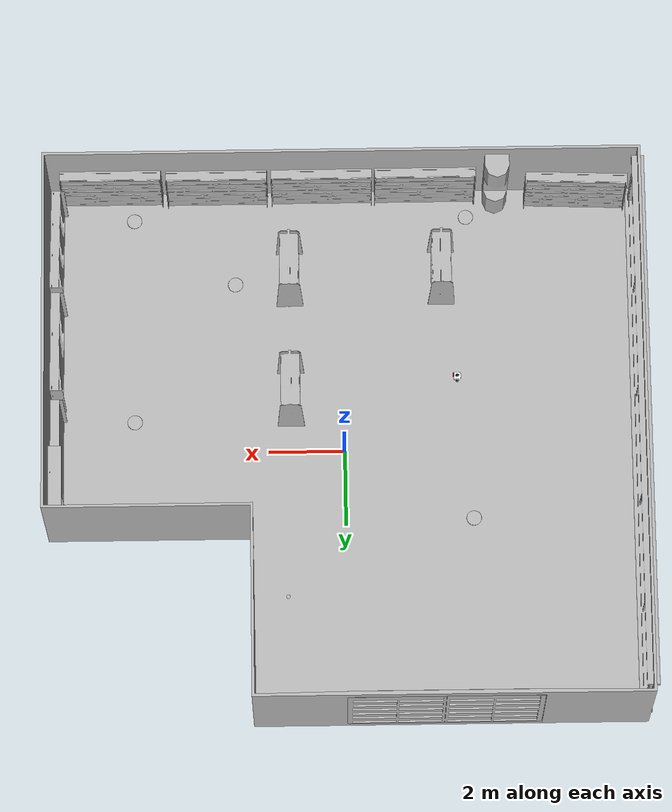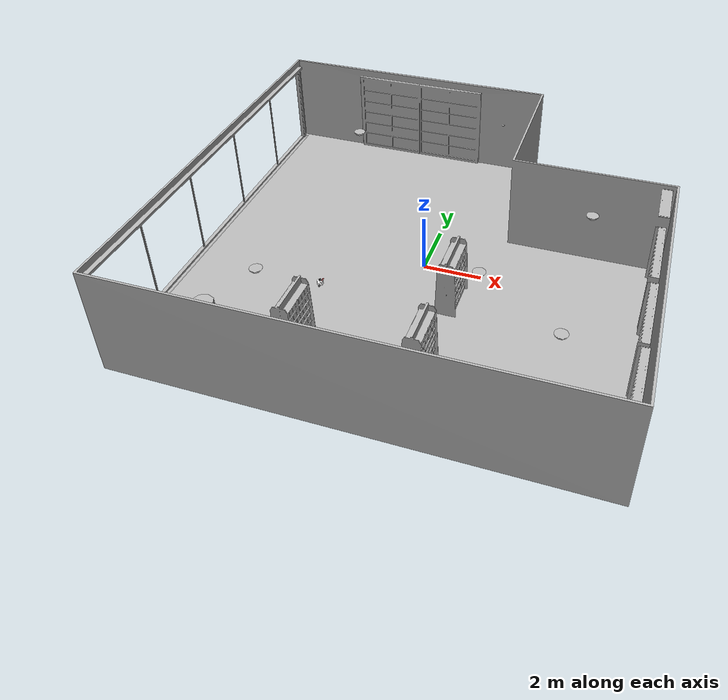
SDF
<sdf version="1.7">
 <world name="default">
  <gravity>0 0 -9.8</gravity>
  <magnetic_field>6e-06 2.3e-05 -4.2e-05</magnetic_field>
  <atmosphere type="adiabatic"/>
  <physics name="default_physics" default="0" type="ode">
   <max_step_size>0.001</max_step_size>
   <real_time_factor>1</real_time_factor>
   <real_time_update_rate>1000</real_time_update_rate>
  </physics>
  <scene>
   <ambient>0.4 0.4 0.4 1</ambient>
   <background>0.7 0.7 0.7 1</background>
   <shadows>1</shadows>
   <grid>0</grid>
   <origin_visual>0</origin_visual>
  </scene>
  <spherical_coordinates>
   <surface_model>EARTH_WGS84</surface_model>
   <latitude_deg>0</latitude_deg>
   <longitude_deg>0</longitude_deg>
   <elevation>0</elevation>
   <heading_deg>0</heading_deg>
  </spherical_coordinates>
  <model name="AirConditionerC_01_001">
   <frame name="aws_robomaker_retail_AirConditionerC_01::__model__" attached_to="aws_robomaker_retail_AirConditionerC_01::link">
    <pose relative_to="__model__">0 0 0 0 -0 0</pose>
   </frame>
   <link name="aws_robomaker_retail_AirConditionerC_01::link">
    <inertial><mass>50</mass></inertial>
    <collision name="collision">
     <geometry>
      <mesh>
       <uri>model://aws_robomaker_retail_AirConditionerC_01/meshes/aws_AirConditionerC_01_collision.DAE</uri>
       <scale>1 1 1</scale>
      </mesh>
     </geometry>
    </collision>
    <visual name="visual">
     <geometry>
      <mesh>
       <uri>model://aws_robomaker_retail_AirConditionerC_01/meshes/aws_AirConditionerC_01_visual.DAE</uri>
      </mesh>
     </geometry>
     <meta><layer>3</layer></meta>
    </visual>
    <pose relative_to="aws_robomaker_retail_AirConditionerC_01::__model__">0 0 0 0 -0 0</pose>
   </link>
   <static>1</static>
   <pose>7.4582 1.42245 3.29094 0 0 -1.56422</pose>
  </model>
  <model name="BookshelfA_01_001">
   <frame name="aws_robomaker_retail_BookshelfA_01::__model__" attached_to="aws_robomaker_retail_BookshelfA_01::link">
    <pose relative_to="__model__">0 0 0 0 -0 0</pose>
   </frame>
   <link name="aws_robomaker_retail_BookshelfA_01::link">
    <inertial>
     <mass>50</mass>
     <inertia><ixx>27.7341</ixx><ixy>0</ixy><ixz>0</ixz><iyy>20.9361</iyy><iyz>0</iyz><izz>11.3596</izz></inertia>
    </inertial>
    <collision name="collision">
     <geometry>
      <mesh>
       <uri>model://aws_robomaker_retail_BookshelfA_01/meshes/aws_BookshelfA_01_collision.DAE</uri>
       <scale>1 1 1</scale>
      </mesh>
     </geometry>
    </collision>
    <visual name="visual">
     <geometry>
      <mesh><uri>model://aws_robomaker_retail_BookshelfA_01/meshes/aws_BookshelfA_01_visual.DAE</uri></mesh>
     </geometry>
     <meta><layer>1</layer></meta>
    </visual>
    <pose relative_to="aws_robomaker_retail_BookshelfA_01::__model__">0 0 0 0 -0 0</pose>
   </link>
   <static>1</static>
   <pose>1.40515 -1.44974 0.03755 0.00349 -3e-06 0.000696</pose>
  </model>
  <model name="BookshelfA_01_002">
   <frame name="aws_robomaker_retail_BookshelfA_01::__model__" attached_to="aws_robomaker_retail_BookshelfA_01::link">
    <pose relative_to="__model__">0 0 0 0 -0 0</pose>
   </frame>
   <link name="aws_robomaker_retail_BookshelfA_01::link">
    <inertial>
     <mass>50</mass>
     <inertia><ixx>27.7341</ixx><ixy>0</ixy><ixz>0</ixz><iyy>20.9361</iyy><iyz>0</iyz><izz>11.3596</izz></inertia>
    </inertial>
    <collision name="collision">
     <geometry>
      <mesh>
       <uri>model://aws_robomaker_retail_BookshelfA_01/meshes/aws_BookshelfA_01_collision.DAE</uri>
       <scale>1 1 1</scale>
      </mesh>
     </geometry>
    </collision>
    <visual name="visual">
     <geometry>
      <mesh><uri>model://aws_robomaker_retail_BookshelfA_01/meshes/aws_BookshelfA_01_visual.DAE</uri></mesh>
     </geometry>
     <meta><layer>1</layer></meta>
    </visual>
    <pose relative_to="aws_robomaker_retail_BookshelfA_01::__model__">0 0 0 0 -0 0</pose>
   </link>
   <static>1</static>
   <pose>1.40515 -4.76165 0.003411 0 -0 0</pose>
  </model>
  <model name="BookshelfA_01_004">
   <frame name="aws_robomaker_retail_BookshelfA_01::__model__" attached_to="aws_robomaker_retail_BookshelfA_01::link">
    <pose relative_to="__model__">0 0 0 0 -0 0</pose>
   </frame>
   <link name="aws_robomaker_retail_BookshelfA_01::link">
    <inertial>
     <mass>50</mass>
     <inertia><ixx>27.7341</ixx><ixy>0</ixy><ixz>0</ixz><iyy>20.9361</iyy><iyz>0</iyz><izz>11.3596</izz></inertia>
    </inertial>
    <collision name="collision">
     <geometry>
      <mesh>
       <uri>model://aws_robomaker_retail_BookshelfA_01/meshes/aws_BookshelfA_01_collision.DAE</uri>
       <scale>1 1 1</scale>
      </mesh>
     </geometry>
    </collision>
    <visual name="visual">
     <geometry>
      <mesh><uri>model://aws_robomaker_retail_BookshelfA_01/meshes/aws_BookshelfA_01_visual.DAE</uri></mesh>
     </geometry>
     <meta><layer>1</layer></meta>
    </visual>
    <pose relative_to="aws_robomaker_retail_BookshelfA_01::__model__">0 0 0 0 -0 0</pose>
   </link>
   <static>1</static>
   <pose>-2.60858 -4.76165 0.003411 0 -0 0</pose>
  </model>
  <model name="BookshelfB_01_001">
   <frame name="aws_robomaker_retail_BookshelfB_01::__model__" attached_to="aws_robomaker_retail_BookshelfB_01::link">
    <pose relative_to="__model__">0 0 0 0 -0 0</pose>
   </frame>
   <link name="aws_robomaker_retail_BookshelfB_01::link">
    <inertial>
     <mass>50</mass>
     <inertia><ixx>19.8742</ixx><ixy>0</ixy><ixz>0</ixz><iyy>49.1263</iyy><iyz>0</iyz><izz>30.2231</izz></inertia>
    </inertial>
    <collision name="collision">
     <geometry>
      <mesh>
       <uri>model://aws_robomaker_retail_BookshelfB_01/meshes/aws_BookshelfB_01_collision.DAE</uri>
       <scale>1 1 1</scale>
      </mesh>
     </geometry>
    </collision>
    <visual name="visual">
     <geometry>
      <mesh><uri>model://aws_robomaker_retail_BookshelfB_01/meshes/aws_BookshelfB_01_visual.DAE</uri></mesh>
     </geometry>
     <meta><layer>1</layer></meta>
    </visual>
    <pose relative_to="aws_robomaker_retail_BookshelfB_01::__model__">0 0 0 0 -0 0</pose>
   </link>
   <static>1</static>
   <pose>-6.18968 -6.78565 -0.008942 0.003533 0.000121 -0.032073</pose>
  </model>
  <model name="BookshelfB_01_002">
   <frame name="aws_robomaker_retail_BookshelfB_01::__model__" attached_to="aws_robomaker_retail_BookshelfB_01::link">
    <pose relative_to="__model__">0 0 0 0 -0 0</pose>
   </frame>
   <link name="aws_robomaker_retail_BookshelfB_01::link">
    <inertial>
     <mass>50</mass>
     <inertia><ixx>19.8742</ixx><ixy>0</ixy><ixz>0</ixz><iyy>49.1263</iyy><iyz>0</iyz><izz>30.2231</izz></inertia>
    </inertial>
    <collision name="collision">
     <geometry>
      <mesh>
       <uri>model://aws_robomaker_retail_BookshelfB_01/meshes/aws_BookshelfB_01_collision.DAE</uri>
       <scale>1 1 1</scale>
      </mesh>
     </geometry>
    </collision>
    <visual name="visual">
     <geometry>
      <mesh><uri>model://aws_robomaker_retail_BookshelfB_01/meshes/aws_BookshelfB_01_visual.DAE</uri></mesh>
     </geometry>
     <meta><layer>1</layer></meta>
    </visual>
    <pose relative_to="aws_robomaker_retail_BookshelfB_01::__model__">0 0 0 0 -0 0</pose>
   </link>
   <static>1</static>
   <pose>-2.20941 -6.97146 0.017074 -0.000128 -0.000252 0.000364</pose>
  </model>
  <model name="BookshelfB_01_003">
   <frame name="aws_robomaker_retail_BookshelfB_01::__model__" attached_to="aws_robomaker_retail_BookshelfB_01::link">
    <pose relative_to="__model__">0 0 0 0 -0 0</pose>
   </frame>
   <link name="aws_robomaker_retail_BookshelfB_01::link">
    <inertial>
     <mass>50</mass>
     <inertia><ixx>19.8742</ixx><ixy>0</ixy><ixz>0</ixz><iyy>49.1263</iyy><iyz>0</iyz><izz>30.2231</izz></inertia>
    </inertial>
    <collision name="collision">
     <geometry>
      <mesh>
       <uri>model://aws_robomaker_retail_BookshelfB_01/meshes/aws_BookshelfB_01_collision.DAE</uri>
       <scale>1 1 1</scale>
      </mesh>
     </geometry>
    </collision>
    <visual name="visual">
     <geometry>
      <mesh><uri>model://aws_robomaker_retail_BookshelfB_01/meshes/aws_BookshelfB_01_visual.DAE</uri></mesh>
     </geometry>
     <meta><layer>1</layer></meta>
    </visual>
    <pose relative_to="aws_robomaker_retail_BookshelfB_01::__model__">0 0 0 0 -0 0</pose>
   </link>
   <static>1</static>
   <pose>0.522246 -6.9715 0.017947 -0.003292 0 0</pose>
  </model>
  <model name="BookshelfB_01_004">
   <frame name="aws_robomaker_retail_BookshelfB_01::__model__" attached_to="aws_robomaker_retail_BookshelfB_01::link">
    <pose relative_to="__model__">0 0 0 0 -0 0</pose>
   </frame>
   <link name="aws_robomaker_retail_BookshelfB_01::link">
    <inertial>
     <mass>50</mass>
     <inertia><ixx>19.8742</ixx><ixy>0</ixy><ixz>0</ixz><iyy>49.1263</iyy><iyz>0</iyz><izz>30.2231</izz></inertia>
    </inertial>
    <collision name="collision">
     <geometry>
      <mesh>
       <uri>model://aws_robomaker_retail_BookshelfB_01/meshes/aws_BookshelfB_01_collision.DAE</uri>
       <scale>1 1 1</scale>
      </mesh>
     </geometry>
    </collision>
    <visual name="visual">
     <geometry>
      <mesh><uri>model://aws_robomaker_retail_BookshelfB_01/meshes/aws_BookshelfB_01_visual.DAE</uri></mesh>
     </geometry>
     <meta><layer>1</layer></meta>
    </visual>
    <pose relative_to="aws_robomaker_retail_BookshelfB_01::__model__">0 0 0 0 -0 0</pose>
   </link>
   <static>1</static>
   <pose>3.29339 -6.96366 0.017383 8e-06 -2e-06 -0</pose>
  </model>
  <model name="BookshelfB_01_005">
   <frame name="aws_robomaker_retail_BookshelfB_01::__model__" attached_to="aws_robomaker_retail_BookshelfB_01::link">
    <pose relative_to="__model__">0 0 0 0 -0 0</pose>
   </frame>
   <link name="aws_robomaker_retail_BookshelfB_01::link">
    <inertial>
     <mass>50</mass>
     <inertia><ixx>19.8742</ixx><ixy>0</ixy><ixz>0</ixz><iyy>49.1263</iyy><iyz>0</iyz><izz>30.2231</izz></inertia>
    </inertial>
    <collision name="collision">
     <geometry>
      <mesh>
       <uri>model://aws_robomaker_retail_BookshelfB_01/meshes/aws_BookshelfB_01_collision.DAE</uri>
       <scale>1 1 1</scale>
      </mesh>
     </geometry>
    </collision>
    <visual name="visual">
     <geometry>
      <mesh><uri>model://aws_robomaker_retail_BookshelfB_01/meshes/aws_BookshelfB_01_visual.DAE</uri></mesh>
     </geometry>
     <meta><layer>1</layer></meta>
    </visual>
    <pose relative_to="aws_robomaker_retail_BookshelfB_01::__model__">0 0 0 0 -0 0</pose>
   </link>
   <static>1</static>
   <pose>6.08038 -6.98766 0.017409 0.000174 4e-06 0</pose>
  </model>
  <model name="BookshelfB_01_006">
   <frame name="aws_robomaker_retail_BookshelfB_01::__model__" attached_to="aws_robomaker_retail_BookshelfB_01::link">
    <pose relative_to="__model__">0 0 0 0 -0 0</pose>
   </frame>
   <link name="aws_robomaker_retail_BookshelfB_01::link">
    <inertial>
     <mass>50</mass>
     <inertia><ixx>19.8742</ixx><ixy>0</ixy><ixz>0</ixz><iyy>49.1263</iyy><iyz>0</iyz><izz>30.2231</izz></inertia>
    </inertial>
    <collision name="collision">
     <geometry>
      <mesh>
       <uri>model://aws_robomaker_retail_BookshelfB_01/meshes/aws_BookshelfB_01_collision.DAE</uri>
       <scale>1 1 1</scale>
      </mesh>
     </geometry>
    </collision>
    <visual name="visual">
     <geometry>
      <mesh><uri>model://aws_robomaker_retail_BookshelfB_01/meshes/aws_BookshelfB_01_visual.DAE</uri></mesh>
     </geometry>
     <meta><layer>1</layer></meta>
    </visual>
    <pose relative_to="aws_robomaker_retail_BookshelfB_01::__model__">0 0 0 0 -0 0</pose>
   </link>
   <static>1</static>
   <pose>7.47833 -5.2983 0.017443 -0.001974 -0.000211 1.55406</pose>
  </model>
  <model name="BookshelfB_01_007">
   <frame name="aws_robomaker_retail_BookshelfB_01::__model__" attached_to="aws_robomaker_retail_BookshelfB_01::link">
    <pose relative_to="__model__">0 0 0 0 -0 0</pose>
   </frame>
   <link name="aws_robomaker_retail_BookshelfB_01::link">
    <inertial>
     <mass>50</mass>
     <inertia><ixx>19.8742</ixx><ixy>0</ixy><ixz>0</ixz><iyy>49.1263</iyy><iyz>0</iyz><izz>30.2231</izz></inertia>
    </inertial>
    <collision name="collision">
     <geometry>
      <mesh>
       <uri>model://aws_robomaker_retail_BookshelfB_01/meshes/aws_BookshelfB_01_collision.DAE</uri>
       <scale>1 1 1</scale>
      </mesh>
     </geometry>
    </collision>
    <visual name="visual">
     <geometry>
      <mesh><uri>model://aws_robomaker_retail_BookshelfB_01/meshes/aws_BookshelfB_01_visual.DAE</uri></mesh>
     </geometry>
     <meta><layer>1</layer></meta>
    </visual>
    <pose relative_to="aws_robomaker_retail_BookshelfB_01::__model__">0 0 0 0 -0 0</pose>
   </link>
   <static>1</static>
   <pose>7.47833 -2.51065 0.017402 1e-05 -1.3e-05 1.56207</pose>
  </model>
  <model name="BookshelfB_01_008">
   <frame name="aws_robomaker_retail_BookshelfB_01::__model__" attached_to="aws_robomaker_retail_BookshelfB_01::link">
    <pose relative_to="__model__">0 0 0 0 -0 0</pose>
   </frame>
   <link name="aws_robomaker_retail_BookshelfB_01::link">
    <inertial>
     <mass>50</mass>
     <inertia><ixx>19.8742</ixx><ixy>0</ixy><ixz>0</ixz><iyy>49.1263</iyy><iyz>0</iyz><izz>30.2231</izz></inertia>
    </inertial>
    <collision name="collision">
     <geometry>
      <mesh>
       <uri>model://aws_robomaker_retail_BookshelfB_01/meshes/aws_BookshelfB_01_collision.DAE</uri>
       <scale>1 1 1</scale>
      </mesh>
     </geometry>
    </collision>
    <visual name="visual">
     <geometry>
      <mesh><uri>model://aws_robomaker_retail_BookshelfB_01/meshes/aws_BookshelfB_01_visual.DAE</uri></mesh>
     </geometry>
     <meta><layer>1</layer></meta>
    </visual>
    <pose relative_to="aws_robomaker_retail_BookshelfB_01::__model__">0 0 0 0 -0 0</pose>
   </link>
   <static>1</static>
   <pose>7.47833 0.402539 0.017181 3e-06 -0.000156 1.5708</pose>
  </model>
  <model name="ColumnB_01_002">
   <frame name="aws_robomaker_retail_ColumnB_01::__model__" attached_to="aws_robomaker_retail_ColumnB_01::link">
    <pose relative_to="__model__">0 0 0 0 -0 0</pose>
   </frame>
   <link name="aws_robomaker_retail_ColumnB_01::link">
    <inertial>
     <mass>50</mass>
     <inertia><ixx>44.5597</ixx><ixy>0</ixy><ixz>0</ixz><iyy>44.5597</iyy><iyz>0</iyz><izz>1.87942</izz></inertia>
    </inertial>
    <collision name="collision">
     <geometry>
      <mesh>
       <uri>model://aws_robomaker_retail_ColumnB_01/meshes/aws_ColumnB_01_collision.DAE</uri>
       <scale>1 1 1</scale>
      </mesh>
     </geometry>
    </collision>
    <visual name="visual">
     <geometry>
      <mesh><uri>model://aws_robomaker_retail_ColumnB_01/meshes/aws_ColumnB_01_visual.DAE</uri></mesh>
     </geometry>
     <meta><layer>1</layer></meta>
    </visual>
    <pose relative_to="aws_robomaker_retail_ColumnB_01::__model__">0 0 0 0 -0 0</pose>
   </link>
   <static>1</static>
   <pose>-4.07623 -6.86071 0.017511 0.001895 -0.000628 -0.003755</pose>
  </model>
  <model name="DoorB_01_001">
   <frame name="aws_robomaker_retail_DoorB_01::__model__" attached_to="aws_robomaker_retail_DoorB_01::link">
    <pose relative_to="__model__">0 0 0 0 -0 0</pose>
   </frame>
   <link name="aws_robomaker_retail_DoorB_01::link">
    <inertial>
     <mass>50</mass>
     <inertia><ixx>44.5597</ixx><ixy>0</ixy><ixz>0</ixz><iyy>151.699</iyy><iyz>0</iyz><izz>107.806</izz></inertia>
    </inertial>
    <collision name="collision">
     <geometry>
      <mesh>
       <uri>model://aws_robomaker_retail_DoorB_01/meshes/aws_DoorB_01_collision.DAE</uri>
       <scale>1 1 1</scale>
      </mesh>
     </geometry>
    </collision>
    <visual name="visual">
     <geometry>
      <mesh><uri>model://aws_robomaker_retail_DoorB_01/meshes/aws_DoorB_01_visual.DAE</uri></mesh>
     </geometry>
     <meta><layer>2</layer></meta>
    </visual>
    <pose relative_to="aws_robomaker_retail_DoorB_01::__model__">0 0 0 0 -0 0</pose>
   </link>
   <static>1</static>
   <pose>-2.49246 7.21937 -0.035203 0 -0 0</pose>
  </model>
  <model name="RetailShopFloor_01_001">
   <frame name="aws_robomaker_retail_RetailShopFloor_01::__model__" attached_to="aws_robomaker_retail_RetailShopFloor_01::link">
    <pose relative_to="__model__">0 0 0 0 -0 0</pose>
   </frame>
   <link name="aws_robomaker_retail_RetailShopFloor_01::link">
    <inertial><mass>100</mass></inertial>
    <collision name="collision">
     <geometry>
      <mesh>
       <uri>model://aws_robomaker_retail_RetailShopFloor_01/meshes/aws_RetailShopFloor_01_collision.DAE</uri>
       <scale>1 1 1</scale>
      </mesh>
     </geometry>
    </collision>
    <visual name="visual">
     <geometry>
      <mesh>
       <uri>model://aws_robomaker_retail_RetailShopFloor_01/meshes/aws_RetailShopFloor_01_visual.DAE</uri>
      </mesh>
     </geometry>
     <meta><layer>1</layer></meta>
    </visual>
    <pose relative_to="aws_robomaker_retail_RetailShopFloor_01::__model__">0 0 0 0 -0 0</pose>
   </link>
   <static>1</static>
   <pose>-0.002687 0 -0.276618 0 -0 0</pose>
  </model>
  <model name="Horologe_01_001">
   <frame name="aws_robomaker_retail_Horologe_01::__model__" attached_to="aws_robomaker_retail_Horologe_01::link">
    <pose relative_to="__model__">0 0 0 0 -0 0</pose>
   </frame>
   <link name="aws_robomaker_retail_Horologe_01::link">
    <inertial><mass>1</mass></inertial>
    <collision name="collision">
     <geometry>
      <mesh>
       <uri>model://aws_robomaker_retail_Horologe_01/meshes/aws_Horologe_01_collision.DAE</uri>
       <scale>1 1 1</scale>
      </mesh>
     </geometry>
    </collision>
    <visual name="visual">
     <geometry>
      <mesh><uri>model://aws_robomaker_retail_Horologe_01/meshes/aws_Horologe_01_visual.DAE</uri></mesh>
     </geometry>
     <meta><layer>2</layer></meta>
    </visual>
    <pose relative_to="aws_robomaker_retail_Horologe_01::__model__">0 0 0 0 -0 0</pose>
   </link>
   <static>1</static>
   <pose>2.40512 3.02571 2.52519 0 0 -1.56558</pose>
  </model>
  <model name="RetailShopWall_01_001">
   <frame name="aws_robomaker_retail_RetailShopWall_01::__model__" attached_to="aws_robomaker_retail_RetailShopWall_01::link">
    <pose relative_to="__model__">0 0 0 0 -0 0</pose>
   </frame>
   <link name="aws_robomaker_retail_RetailShopWall_01::link">
    <inertial><mass>1</mass></inertial>
    <collision name="collision">
     <geometry>
      <mesh>
       <uri>model://aws_robomaker_retail_RetailShopWall_01/meshes/aws_RetailShopWall_01_collision.DAE</uri>
       <scale>1 1 1</scale>
      </mesh>
     </geometry>
    </collision>
    <visual name="visual">
     <geometry>
      <mesh><uri>model://aws_robomaker_retail_RetailShopWall_01/meshes/aws_RetailShopWall_01_visual.DAE</uri></mesh>
     </geometry>
     <meta><layer>2</layer></meta>
    </visual>
    <pose relative_to="aws_robomaker_retail_RetailShopWall_01::__model__">0 0 0 0 -0 0</pose>
   </link>
   <static>1</static>
   <pose>0 0 -0.281282 0 -0 0</pose>
  </model>
  <model name="LightA_01_001">
   <frame name="aws_robomaker_retail_LightA_01::__model__" attached_to="aws_robomaker_retail_LightA_01::link">
    <pose relative_to="__model__">0 0 0 0 -0 0</pose>
   </frame>
   <link name="aws_robomaker_retail_LightA_01::link">
    <inertial><mass>1</mass></inertial>
    <collision name="collision">
     <geometry>
      <mesh>
       <uri>model://aws_robomaker_retail_LightA_01/meshes/aws_LightA_01_collision.DAE</uri>
       <scale>1 1 1</scale>
      </mesh>
     </geometry>
    </collision>
    <visual name="visual">
     <geometry>
      <mesh><uri>model://aws_robomaker_retail_LightA_01/meshes/aws_LightA_01_visual.DAE</uri></mesh>
     </geometry>
     <meta><layer>3</layer></meta>
    </visual>
    <pose relative_to="aws_robomaker_retail_LightA_01::__model__">0 0 0 0 -0 0</pose>
   </link>
   <static>1</static>
   <pose>2.77442 -3.62815 3.15033 0 -0 0</pose>
  </model>
  <model name="LightA_01_002">
   <frame name="aws_robomaker_retail_LightA_01::__model__" attached_to="aws_robomaker_retail_LightA_01::link">
    <pose relative_to="__model__">0 0 0 0 -0 0</pose>
   </frame>
   <link name="aws_robomaker_retail_LightA_01::link">
    <inertial><mass>1</mass></inertial>
    <collision name="collision">
     <geometry>
      <mesh>
       <uri>model://aws_robomaker_retail_LightA_01/meshes/aws_LightA_01_collision.DAE</uri>
       <scale>1 1 1</scale>
      </mesh>
     </geometry>
    </collision>
    <visual name="visual">
     <geometry>
      <mesh><uri>model://aws_robomaker_retail_LightA_01/meshes/aws_LightA_01_visual.DAE</uri></mesh>
     </geometry>
     <meta><layer>3</layer></meta>
    </visual>
    <pose relative_to="aws_robomaker_retail_LightA_01::__model__">0 0 0 0 -0 0</pose>
   </link>
   <static>1</static>
   <pose>5.38399 -5.38371 3.15033 0 -0 0</pose>
  </model>
  <model name="LightA_01_003">
   <frame name="aws_robomaker_retail_LightA_01::__model__" attached_to="aws_robomaker_retail_LightA_01::link">
    <pose relative_to="__model__">0 0 0 0 -0 0</pose>
   </frame>
   <link name="aws_robomaker_retail_LightA_01::link">
    <inertial><mass>1</mass></inertial>
    <collision name="collision">
     <geometry>
      <mesh>
       <uri>model://aws_robomaker_retail_LightA_01/meshes/aws_LightA_01_collision.DAE</uri>
       <scale>1 1 1</scale>
      </mesh>
     </geometry>
    </collision>
    <visual name="visual">
     <geometry>
      <mesh><uri>model://aws_robomaker_retail_LightA_01/meshes/aws_LightA_01_visual.DAE</uri></mesh>
     </geometry>
     <meta><layer>3</layer></meta>
    </visual>
    <pose relative_to="aws_robomaker_retail_LightA_01::__model__">0 0 0 0 -0 0</pose>
   </link>
   <static>1</static>
   <pose>5.38399 0.04192 3.15033 0 -0 0</pose>
  </model>
  <model name="LightA_01_004">
   <frame name="aws_robomaker_retail_LightA_01::__model__" attached_to="aws_robomaker_retail_LightA_01::link">
    <pose relative_to="__model__">0 0 0 0 -0 0</pose>
   </frame>
   <link name="aws_robomaker_retail_LightA_01::link">
    <inertial><mass>1</mass></inertial>
    <collision name="collision">
     <geometry>
      <mesh>
       <uri>model://aws_robomaker_retail_LightA_01/meshes/aws_LightA_01_collision.DAE</uri>
       <scale>1 1 1</scale>
      </mesh>
     </geometry>
    </collision>
    <visual name="visual">
     <geometry>
      <mesh><uri>model://aws_robomaker_retail_LightA_01/meshes/aws_LightA_01_visual.DAE</uri></mesh>
     </geometry>
     <meta><layer>3</layer></meta>
    </visual>
    <pose relative_to="aws_robomaker_retail_LightA_01::__model__">0 0 0 0 -0 0</pose>
   </link>
   <static>1</static>
   <pose>-3.21067 -5.38371 3.15033 0 -0 0</pose>
  </model>
  <model name="LightA_01_005">
   <frame name="aws_robomaker_retail_LightA_01::__model__" attached_to="aws_robomaker_retail_LightA_01::link">
    <pose relative_to="__model__">0 0 0 0 -0 0</pose>
   </frame>
   <link name="aws_robomaker_retail_LightA_01::link">
    <inertial><mass>1</mass></inertial>
    <collision name="collision">
     <geometry>
      <mesh>
       <uri>model://aws_robomaker_retail_LightA_01/meshes/aws_LightA_01_collision.DAE</uri>
       <scale>1 1 1</scale>
      </mesh>
     </geometry>
    </collision>
    <visual name="visual">
     <geometry>
      <mesh><uri>model://aws_robomaker_retail_LightA_01/meshes/aws_LightA_01_visual.DAE</uri></mesh>
     </geometry>
     <meta><layer>3</layer></meta>
    </visual>
    <pose relative_to="aws_robomaker_retail_LightA_01::__model__">0 0 0 0 -0 0</pose>
   </link>
   <static>1</static>
   <pose>-3.271 2.68593 3.15033 0 -0 0</pose>
  </model>
  <model name="Spotlight_01_001">
   <frame name="aws_robomaker_retail_Spotlight_01::__model__" attached_to="aws_robomaker_retail_Spotlight_01::link">
    <pose relative_to="__model__">0 0 0 0 -0 0</pose>
   </frame>
   <link name="aws_robomaker_retail_Spotlight_01::link">
    <inertial><mass>1</mass></inertial>
    <collision name="collision">
     <geometry>
      <mesh>
       <uri>model://aws_robomaker_retail_Spotlight_01/meshes/aws_Spotlight_01_collision.DAE</uri>
       <scale>1 1 1</scale>
      </mesh>
     </geometry>
    </collision>
    <visual name="visual">
     <geometry>
      <mesh><uri>model://aws_robomaker_retail_Spotlight_01/meshes/aws_Spotlight_01_visual.DAE</uri></mesh>
     </geometry>
     <meta><layer>3</layer></meta>
    </visual>
    <pose relative_to="aws_robomaker_retail_Spotlight_01::__model__">0 0 0 0 -0 0</pose>
   </link>
   <static>1</static>
   <pose>1.4932 4.69237 3.30266 0 -0 0</pose>
  </model>
  <model name="ShopWindow_01_001">
   <frame name="aws_robomaker_retail_ShopWindow_01::__model__" attached_to="aws_robomaker_retail_ShopWindow_01::link">
    <pose relative_to="__model__">0 0 0 0 -0 0</pose>
   </frame>
   <link name="aws_robomaker_retail_ShopWindow_01::link">
    <inertial><mass>1</mass></inertial>
    <collision name="collision">
     <geometry>
      <mesh>
       <uri>model://aws_robomaker_retail_ShopWindow_01/meshes/aws_ShopWindow_01_collision.DAE</uri>
       <scale>1 1 1</scale>
      </mesh>
     </geometry>
    </collision>
    <visual name="visual">
     <geometry>
      <mesh><uri>model://aws_robomaker_retail_ShopWindow_01/meshes/aws_ShopWindow_01_visual.DAE</uri></mesh>
     </geometry>
    </visual>
    <pose relative_to="aws_robomaker_retail_ShopWindow_01::__model__">0 0 0 0 -0 0</pose>
   </link>
   <static>1</static>
   <pose>-7.73816 0.01596 -0.180092 0 -0 0</pose>
  </model>
  <light name="sun" type="directional">
   <pose>0 0 10 0 -0 0</pose>
   <diffuse>0.8 0.8 0.8 1</diffuse>
   <specular>0.2 0.2 0.2 1</specular>
   <attenuation>
    <range>1000</range>
    <constant>0.9</constant>
    <linear>0.01</linear>
    <quadratic>0.001</quadratic>
   </attenuation>
   <direction>-0.5 0.1 -0.9</direction>
   <spot><inner_angle>0</inner_angle><outer_angle>0</outer_angle><falloff>0</falloff></spot>
  </light>
  <light name="RetailShop_CeilingLight_001" type="point">
   <pose>2.77442 -3.62815 3.17847 0 -0 0</pose>
   <diffuse>0.5 0.5 0.5 1</diffuse>
   <specular>0.1 0.1 0.1 1</specular>
   <attenuation>
    <range>20</range>
    <constant>0.32</constant>
    <linear>0.01</linear>
    <quadratic>0.03</quadratic>
   </attenuation>
   <cast_shadows>0</cast_shadows>
   <direction>0 0 -1</direction>
   <spot><inner_angle>0</inner_angle><outer_angle>0</outer_angle><falloff>0</falloff></spot>
  </light>
  <light name="RetailShop_CeilingLight_002" type="point">
   <pose>5.38399 -5.38371 3.17847 0 -0 0</pose>
   <diffuse>0.5 0.5 0.5 1</diffuse>
   <specular>0.1 0.1 0.1 1</specular>
   <attenuation>
    <range>20</range>
    <constant>0.32</constant>
    <linear>0.01</linear>
    <quadratic>0.03</quadratic>
   </attenuation>
   <cast_shadows>0</cast_shadows>
   <direction>0 0 -1</direction>
   <spot><inner_angle>0</inner_angle><outer_angle>0</outer_angle><falloff>0</falloff></spot>
  </light>
  <light name="RetailShop_CeilingLight_003" type="point">
   <pose>5.38399 0.04192 3.17847 0 -0 0</pose>
   <diffuse>0.5 0.5 0.5 1</diffuse>
   <specular>0.1 0.1 0.1 1</specular>
   <attenuation>
    <range>20</range>
    <constant>0.32</constant>
    <linear>0.01</linear>
    <quadratic>0.03</quadratic>
   </attenuation>
   <cast_shadows>0</cast_shadows>
   <direction>0 0 -1</direction>
   <spot><inner_angle>0</inner_angle><outer_angle>0</outer_angle><falloff>0</falloff></spot>
  </light>
  <light name="RetailShop_CeilingLight_004" type="point">
   <pose>-3.21067 -5.38371 3.17847 0 -0 0</pose>
   <diffuse>0.5 0.5 0.5 1</diffuse>
   <specular>0.1 0.1 0.1 1</specular>
   <attenuation>
    <range>20</range>
    <constant>0.32</constant>
    <linear>0.01</linear>
    <quadratic>0.03</quadratic>
   </attenuation>
   <cast_shadows>0</cast_shadows>
   <direction>0 0 -1</direction>
   <spot><inner_angle>0</inner_angle><outer_angle>0</outer_angle><falloff>0</falloff></spot>
  </light>
  <light name="RetailShop_CeilingLight_005" type="point">
   <pose>-3.271 2.68593 3.17847 0 -0 0</pose>
   <diffuse>0.5 0.5 0.5 1</diffuse>
   <specular>0.1 0.1 0.1 1</specular>
   <attenuation>
    <range>20</range>
    <constant>0.32</constant>
    <linear>0.01</linear>
    <quadratic>0.03</quadratic>
   </attenuation>
   <cast_shadows>0</cast_shadows>
   <direction>0 0 -1</direction>
   <spot><inner_angle>0</inner_angle><outer_angle>0</outer_angle><falloff>0</falloff></spot>
  </light>
  <light name="RetailShop_CeilingLight_006" type="point">
   <pose>1.4932 4.69237 3.17847 0 -0 0</pose>
   <diffuse>0.5 0.5 0.5 1</diffuse>
   <specular>0.1 0.1 0.1 1</specular>
   <attenuation>
    <range>20</range>
    <constant>0.32</constant>
    <linear>0.01</linear>
    <quadratic>0.03</quadratic>
   </attenuation>
   <cast_shadows>0</cast_shadows>
   <direction>0 0 -1</direction>
   <spot><inner_angle>0</inner_angle><outer_angle>0</outer_angle><falloff>0</falloff></spot>
  </light>
  <audio><device>default</device></audio>
  <model name="linorobot2">
   <link name="base_footprint">
    <inertial>
     <pose>0.005213 -4e-06 0.054424 0 -0 0</pose>
     <mass>2.795</mass>
     <inertia>
      <ixx>0.0234121</ixx>
      <ixy>-8.09062e-06</ixy>
      <ixz>-0.00289023</ixz>
      <iyy>0.0235546</iyy>
      <iyz>-2.16981e-05</iyz>
      <izz>0.0110604</izz>
     </inertia>
    </inertial>
    <collision name="base_footprint_fixed_joint_lump__base_link_collision">
     <pose>0 0 0.09426 0 -0 0</pose>
     <geometry><box><size>0.2 0.2 0.18852</size></box></geometry>
    </collision>
    <collision name="base_footprint_fixed_joint_lump__camera_link_collision_1">
     <pose>0.1 0 0.255 0 -0.2 0</pose>
     <geometry><box><size>0.03 0.124 0.03</size></box></geometry>
    </collision>
    <collision name="base_footprint_fixed_joint_lump__laser_collision_2">
     <pose>0.006695 -7.8e-05 0.227759 0 -0 0</pose>
     <geometry><cylinder><length>0.05</length><radius>0.04</radius></cylinder></geometry>
    </collision>
    <visual name="base_footprint_fixed_joint_lump__base_link_visual">
     <pose>0 0 0.0325 0 -0 0</pose>
     <geometry>
      <mesh><scale>1 1 1</scale><uri>model://linorobot2_description/meshes/base_link.STL</uri></mesh>
     </geometry>
     <material>
      <script><name>Gazebo/White</name><uri>file://media/materials/scripts/gazebo.material</uri></script>
     </material>
    </visual>
    <visual name="base_footprint_fixed_joint_lump__camera_link_visual_1">
     <pose>0.1 0 0.255 0 -0.2 0</pose>
     <geometry><box><size>0.03 0.124 0.03</size></box></geometry>
     <material>
      <ambient>0.416 0.051 0.047 1</ambient>
      <diffuse>0.416 0.051 0.047 1</diffuse>
      <specular>0.416 0.051 0.047 1</specular>
      <emissive>0.416 0.051 0.047 1</emissive>
     </material>
    </visual>
    <visual name="base_footprint_fixed_joint_lump__laser_visual_2">
     <pose>0.006695 -7.8e-05 0.227759 0 -0 0</pose>
     <geometry>
      <mesh><scale>1 1 1</scale><uri>model://linorobot2_description/meshes/lidar.STL</uri></mesh>
     </geometry>
     <material>
      <script><name>Gazebo/FlatBlack</name><uri>file://media/materials/scripts/gazebo.material</uri></script>
     </material>
    </visual>
    <sensor name="camera" type="depth">
     <always_on>1</always_on>
     <update_rate>8</update_rate>
     <camera name="camera">
      <horizontal_fov>1.50098</horizontal_fov>
      <image><width>640</width><height>480</height><format>R8G8B8</format></image>
      <clip><near>0.1</near><far>12</far></clip>
     </camera>
     <plugin name="depth_camera_controller" filename="libgazebo_ros_camera.so">
      <ros>
       <remapping>/camera/camera_info:=/camera/color/camera_info</remapping>
       <remapping>/camera/image_raw:=/camera/color/image_raw</remapping>
       <remapping>/camera/points:=/camera/depth/color/points</remapping>
       <remapping>/camera/depth/image_raw:=/camera/depth/image_rect_raw</remapping>
       <qos>
        <topic name="/camera/depth/color/points"><publisher><reliability>best_effort</reliability></publisher></topic>
       </qos>
      </ros>
      <min_depth>0.015</min_depth>
      <max_depth>12.0</max_depth>
      <hack_baseline>0.07</hack_baseline>
      <frame_name>camera_depth_link</frame_name>
      <distortion_k1>0.00000001</distortion_k1>
      <distortion_k2>0.00000001</distortion_k2>
      <distortion_k3>0.00000001</distortion_k3>
      <distortion_t1>0.00000001</distortion_t1>
      <distortion_t2>0.00000001</distortion_t2>
     </plugin>
     <pose>0.1 0 0.255 0 -0.2 0</pose>
    </sensor>
    <sensor name="imu_sensor" type="imu">
     <always_on>1</always_on>
     <update_rate>20</update_rate>
     <visualize>1</visualize>
     <topic>__default_topic__</topic>
     <plugin name="imu_plugin" filename="libgazebo_ros_imu_sensor.so">
      <ros><remapping>~/out:=imu/data</remapping></ros>
      <topicName>imu/data</topicName>
      <bodyName>imu_link</bodyName>
      <updateRateHZ>10.0</updateRateHZ>
      <gaussianNoise>0.0</gaussianNoise>
      <xyzOffset>0 0 0</xyzOffset>
      <rpyOffset>0 0 0</rpyOffset>
      <frameName>imu_link</frameName>
      <initialOrientationAsReference>0</initialOrientationAsReference>
     </plugin>
     <pose>0.07724 0.00013 0.07525 0 -0 0</pose>
    </sensor>
    <sensor name="laser_lidar" type="ray">
     <always_on>1</always_on>
     <update_rate>10</update_rate>
     <visualize>0</visualize>
     <ray>
      <scan>
       <horizontal>
        <samples>360</samples>
        <resolution>1</resolution>
        <min_angle>-3.1416</min_angle>
        <max_angle>3.1416</max_angle>
       </horizontal>
       <vertical><samples>1</samples><min_angle>0</min_angle><max_angle>0</max_angle></vertical>
      </scan>
      <range><min>0.08</min><max>12</max><resolution>0.01</resolution></range>
     </ray>
     <plugin name="laser_lidar_controller" filename="libgazebo_ros_ray_sensor.so">
      <ros><remapping>~/out:=scan</remapping></ros>
      <output_type>sensor_msgs/LaserScan</output_type>
      <alwaysOn>1</alwaysOn>
      <updateRate>10</updateRate>
      <topicName>scan</topicName>
      <frame_name>laser</frame_name>
      <output_type>sensor_msgs/LaserScan</output_type>
     </plugin>
     <pose>0.006695 -7.8e-05 0.227759 0 -0 0</pose>
    </sensor>
   </link>
   <joint name="left_wheel_joint" type="revolute">
    <pose relative_to="base_footprint">0 0.10688 0.0325 0 -0 0</pose>
    <parent>base_footprint</parent>
    <child>left_wheel_link</child>
    <axis>
     <xyz>0 1 0</xyz>
     <limit><lower>-1e+16</lower><upper>1e+16</upper></limit>
     <dynamics><spring_reference>0</spring_reference><spring_stiffness>0</spring_stiffness></dynamics>
    </axis>
   </joint>
   <link name="left_wheel_link">
    <pose relative_to="left_wheel_joint">0 0 0 0 -0 0</pose>
    <inertial>
     <mass>0.7181</mass>
     <inertia>
      <ixx>0.000233248</ixx>
      <ixy>-8.10921e-06</ixy>
      <ixz>3.22064e-06</ixz>
      <iyy>0.000379247</iyy>
      <iyz>-2.38717e-05</iyz>
      <izz>0.000233248</izz>
     </inertia>
    </inertial>
    <collision name="left_wheel_link_collision">
     <pose>0 0 0 1.5708 -0 0</pose>
     <geometry><cylinder><length>0.027</length><radius>0.0325</radius></cylinder></geometry>
    </collision>
    <visual name="left_wheel_link_visual">
     <geometry>
      <mesh><scale>1 1 1</scale><uri>model://linorobot2_description/meshes/wheel_left.STL</uri></mesh>
     </geometry>
     <material>
      <script><name>Gazebo/FlatBlack</name><uri>file://media/materials/scripts/gazebo.material</uri></script>
     </material>
    </visual>
   </link>
   <joint name="right_wheel_joint" type="revolute">
    <pose relative_to="base_footprint">0 -0.10688 0.0325 0 -0 0</pose>
    <parent>base_footprint</parent>
    <child>right_wheel_link</child>
    <axis>
     <xyz>0 1 0</xyz>
     <limit><lower>-1e+16</lower><upper>1e+16</upper></limit>
     <dynamics><spring_reference>0</spring_reference><spring_stiffness>0</spring_stiffness></dynamics>
    </axis>
   </joint>
   <link name="right_wheel_link">
    <pose relative_to="right_wheel_joint">0 0 0 0 -0 0</pose>
    <inertial>
     <mass>0.7181</mass>
     <inertia>
      <ixx>0.000233248</ixx>
      <ixy>-8.10921e-06</ixy>
      <ixz>3.22064e-06</ixz>
      <iyy>0.000379247</iyy>
      <iyz>-2.38717e-05</iyz>
      <izz>0.000233248</izz>
     </inertia>
    </inertial>
    <collision name="right_wheel_link_collision">
     <pose>0 0 0 1.5708 -0 0</pose>
     <geometry><cylinder><length>0.027</length><radius>0.0325</radius></cylinder></geometry>
    </collision>
    <visual name="right_wheel_link_visual">
     <geometry>
      <mesh><scale>1 1 1</scale><uri>model://linorobot2_description/meshes/wheel_right.STL</uri></mesh>
     </geometry>
     <material>
      <script><name>Gazebo/FlatBlack</name><uri>file://media/materials/scripts/gazebo.material</uri></script>
     </material>
    </visual>
   </link>
   <static>0</static>
   <plugin name="differential_drive_controller" filename="libgazebo_ros_diff_drive.so">
    <ros><remapping>odom:=odom/unfiltered</remapping><remapping>cmd_vel:=cmd_vel_safe</remapping></ros>
    <updateRate>100</updateRate>
    <left_joint>left_wheel_joint</left_joint>
    <right_joint>right_wheel_joint</right_joint>
    <wheel_separation>0.21376</wheel_separation>
    <wheel_diameter>0.065</wheel_diameter>
    <max_wheel_acceleration>40.0</max_wheel_acceleration>
    <robot_base_frame>base_footprint</robot_base_frame>
    <publish_odom>1</publish_odom>
    <publish_odom_tf>0</publish_odom_tf>
    <publish_wheel_tf>1</publish_wheel_tf>
    <odometry_frame>odom</odometry_frame>
   </plugin>
   <pose>-3.00056 -2.00024 0.013382 0 0 -0.003097</pose>
  </model>
 </world>
</sdf>
